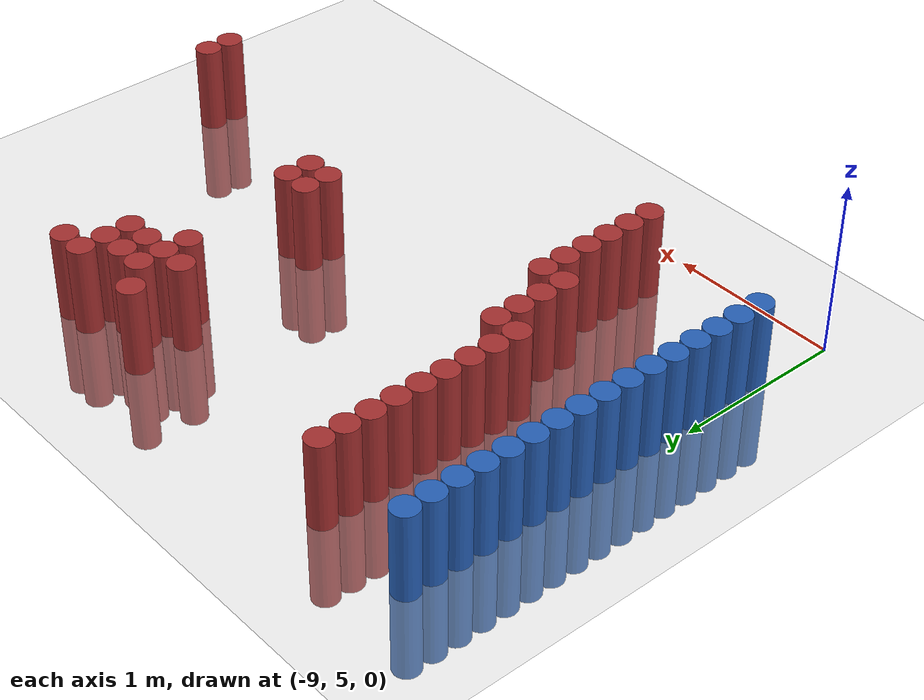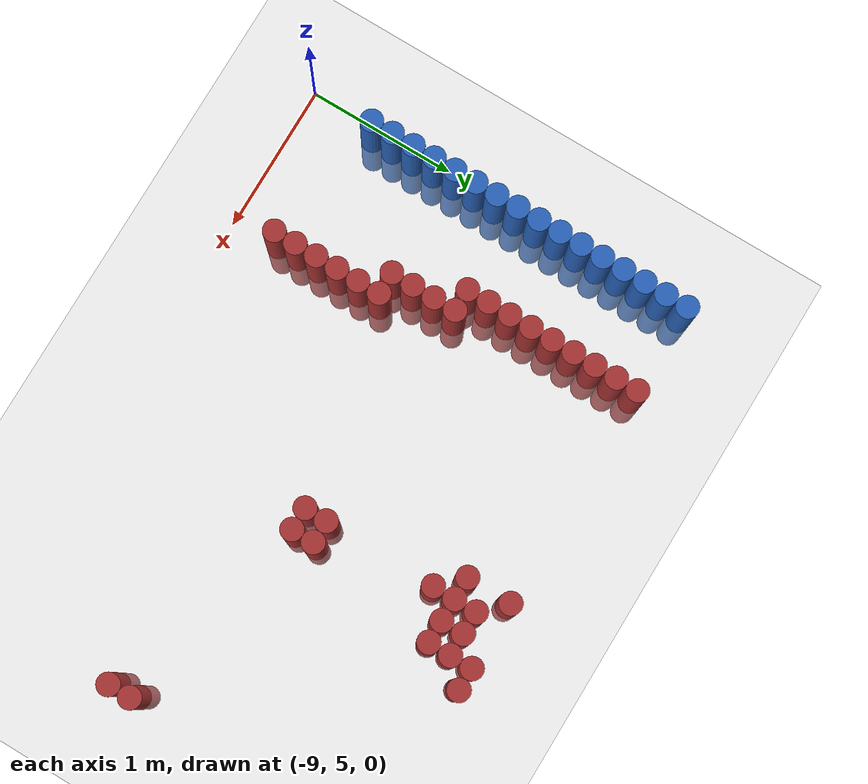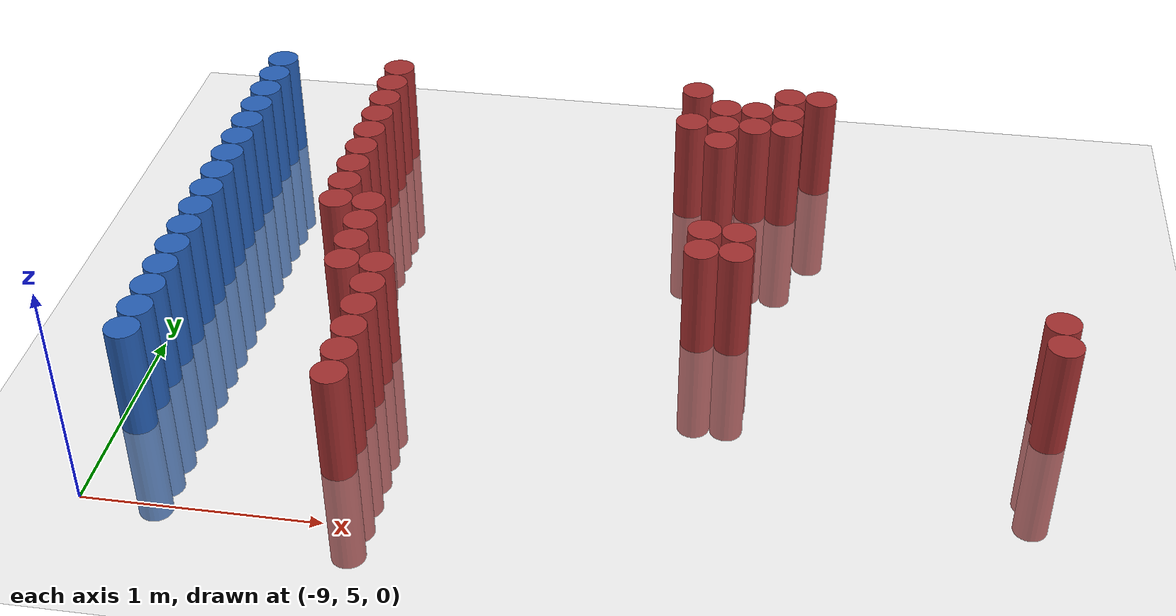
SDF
<sdf version="1.6">
 <world name="default">
  <model name="ground_plane">
   <static>1</static>
   <link name="link">
    <collision name="collision">
     <geometry><plane><normal>0 0 1</normal><size>100 100</size></plane></geometry>
     <surface><friction><ode><mu>100</mu><mu2>50</mu2></ode></friction></surface>
    </collision>
    <visual name="visual">
     <cast_shadows>0</cast_shadows>
     <geometry><plane><normal>0 0 1</normal><size>100 100</size></plane></geometry>
     <material>
      <script><uri>file://media/materials/scripts/gazebo.material</uri><name>Gazebo/Grey</name></script>
     </material>
    </visual>
   </link>
  </model>
  <model name="unit_cylinder_127">
   <static>1</static>
   <pose>-8.925000 5.475000 0.000000 0.000000 0.000000 0.000000</pose>
   <link name="link">
    <inertial>
     <mass>1</mass>
     <inertia><ixx>0.145833</ixx><ixy>0</ixy><ixz>0</ixz><iyy>0.145833</iyy><iyz>0</iyz><izz>0.125</izz></inertia>
    </inertial>
    <collision name="collision">
     <geometry><cylinder><radius>0.075000</radius><length>1</length></cylinder></geometry>
    </collision>
    <visual name="visual">
     <geometry><cylinder><radius>0.075000</radius><length>1</length></cylinder></geometry>
     <material>
      <ambient>0.152000 0.379000 0.720000 1</ambient>
      <diffuse>0.152000 0.379000 0.720000 1</diffuse>
     </material>
     <material>
      <script><name>Gazebo/Grey</name><uri>file://media/materials/scripts/gazebo.material</uri></script>
     </material>
    </visual>
   </link>
  </model>
  <model name="unit_cylinder_128">
   <static>1</static>
   <pose>-8.925000 5.625000 0.000000 0.000000 0.000000 0.000000</pose>
   <link name="link">
    <inertial>
     <mass>1</mass>
     <inertia><ixx>0.145833</ixx><ixy>0</ixy><ixz>0</ixz><iyy>0.145833</iyy><iyz>0</iyz><izz>0.125</izz></inertia>
    </inertial>
    <collision name="collision">
     <geometry><cylinder><radius>0.075000</radius><length>1</length></cylinder></geometry>
    </collision>
    <visual name="visual">
     <geometry><cylinder><radius>0.075000</radius><length>1</length></cylinder></geometry>
     <material>
      <ambient>0.152000 0.379000 0.720000 1</ambient>
      <diffuse>0.152000 0.379000 0.720000 1</diffuse>
     </material>
     <material>
      <script><name>Gazebo/Grey</name><uri>file://media/materials/scripts/gazebo.material</uri></script>
     </material>
    </visual>
   </link>
  </model>
  <model name="unit_cylinder_129">
   <static>1</static>
   <pose>-8.925000 5.775000 0.000000 0.000000 0.000000 0.000000</pose>
   <link name="link">
    <inertial>
     <mass>1</mass>
     <inertia><ixx>0.145833</ixx><ixy>0</ixy><ixz>0</ixz><iyy>0.145833</iyy><iyz>0</iyz><izz>0.125</izz></inertia>
    </inertial>
    <collision name="collision">
     <geometry><cylinder><radius>0.075000</radius><length>1</length></cylinder></geometry>
    </collision>
    <visual name="visual">
     <geometry><cylinder><radius>0.075000</radius><length>1</length></cylinder></geometry>
     <material>
      <ambient>0.152000 0.379000 0.720000 1</ambient>
      <diffuse>0.152000 0.379000 0.720000 1</diffuse>
     </material>
     <material>
      <script><name>Gazebo/Grey</name><uri>file://media/materials/scripts/gazebo.material</uri></script>
     </material>
    </visual>
   </link>
  </model>
  <model name="unit_cylinder_130">
   <static>1</static>
   <pose>-8.925000 5.925000 0.000000 0.000000 0.000000 0.000000</pose>
   <link name="link">
    <inertial>
     <mass>1</mass>
     <inertia><ixx>0.145833</ixx><ixy>0</ixy><ixz>0</ixz><iyy>0.145833</iyy><iyz>0</iyz><izz>0.125</izz></inertia>
    </inertial>
    <collision name="collision">
     <geometry><cylinder><radius>0.075000</radius><length>1</length></cylinder></geometry>
    </collision>
    <visual name="visual">
     <geometry><cylinder><radius>0.075000</radius><length>1</length></cylinder></geometry>
     <material>
      <ambient>0.152000 0.379000 0.720000 1</ambient>
      <diffuse>0.152000 0.379000 0.720000 1</diffuse>
     </material>
     <material>
      <script><name>Gazebo/Grey</name><uri>file://media/materials/scripts/gazebo.material</uri></script>
     </material>
    </visual>
   </link>
  </model>
  <model name="unit_cylinder_131">
   <static>1</static>
   <pose>-8.925000 6.075000 0.000000 0.000000 0.000000 0.000000</pose>
   <link name="link">
    <inertial>
     <mass>1</mass>
     <inertia><ixx>0.145833</ixx><ixy>0</ixy><ixz>0</ixz><iyy>0.145833</iyy><iyz>0</iyz><izz>0.125</izz></inertia>
    </inertial>
    <collision name="collision">
     <geometry><cylinder><radius>0.075000</radius><length>1</length></cylinder></geometry>
    </collision>
    <visual name="visual">
     <geometry><cylinder><radius>0.075000</radius><length>1</length></cylinder></geometry>
     <material>
      <ambient>0.152000 0.379000 0.720000 1</ambient>
      <diffuse>0.152000 0.379000 0.720000 1</diffuse>
     </material>
     <material>
      <script><name>Gazebo/Grey</name><uri>file://media/materials/scripts/gazebo.material</uri></script>
     </material>
    </visual>
   </link>
  </model>
  <model name="unit_cylinder_132">
   <static>1</static>
   <pose>-8.925000 6.225000 0.000000 0.000000 0.000000 0.000000</pose>
   <link name="link">
    <inertial>
     <mass>1</mass>
     <inertia><ixx>0.145833</ixx><ixy>0</ixy><ixz>0</ixz><iyy>0.145833</iyy><iyz>0</iyz><izz>0.125</izz></inertia>
    </inertial>
    <collision name="collision">
     <geometry><cylinder><radius>0.075000</radius><length>1</length></cylinder></geometry>
    </collision>
    <visual name="visual">
     <geometry><cylinder><radius>0.075000</radius><length>1</length></cylinder></geometry>
     <material>
      <ambient>0.152000 0.379000 0.720000 1</ambient>
      <diffuse>0.152000 0.379000 0.720000 1</diffuse>
     </material>
     <material>
      <script><name>Gazebo/Grey</name><uri>file://media/materials/scripts/gazebo.material</uri></script>
     </material>
    </visual>
   </link>
  </model>
  <model name="unit_cylinder_133">
   <static>1</static>
   <pose>-8.925000 6.375000 0.000000 0.000000 0.000000 0.000000</pose>
   <link name="link">
    <inertial>
     <mass>1</mass>
     <inertia><ixx>0.145833</ixx><ixy>0</ixy><ixz>0</ixz><iyy>0.145833</iyy><iyz>0</iyz><izz>0.125</izz></inertia>
    </inertial>
    <collision name="collision">
     <geometry><cylinder><radius>0.075000</radius><length>1</length></cylinder></geometry>
    </collision>
    <visual name="visual">
     <geometry><cylinder><radius>0.075000</radius><length>1</length></cylinder></geometry>
     <material>
      <ambient>0.152000 0.379000 0.720000 1</ambient>
      <diffuse>0.152000 0.379000 0.720000 1</diffuse>
     </material>
     <material>
      <script><name>Gazebo/Grey</name><uri>file://media/materials/scripts/gazebo.material</uri></script>
     </material>
    </visual>
   </link>
  </model>
  <model name="unit_cylinder_134">
   <static>1</static>
   <pose>-8.925000 6.525000 0.000000 0.000000 0.000000 0.000000</pose>
   <link name="link">
    <inertial>
     <mass>1</mass>
     <inertia><ixx>0.145833</ixx><ixy>0</ixy><ixz>0</ixz><iyy>0.145833</iyy><iyz>0</iyz><izz>0.125</izz></inertia>
    </inertial>
    <collision name="collision">
     <geometry><cylinder><radius>0.075000</radius><length>1</length></cylinder></geometry>
    </collision>
    <visual name="visual">
     <geometry><cylinder><radius>0.075000</radius><length>1</length></cylinder></geometry>
     <material>
      <ambient>0.152000 0.379000 0.720000 1</ambient>
      <diffuse>0.152000 0.379000 0.720000 1</diffuse>
     </material>
     <material>
      <script><name>Gazebo/Grey</name><uri>file://media/materials/scripts/gazebo.material</uri></script>
     </material>
    </visual>
   </link>
  </model>
  <model name="unit_cylinder_135">
   <static>1</static>
   <pose>-8.925000 6.675000 0.000000 0.000000 0.000000 0.000000</pose>
   <link name="link">
    <inertial>
     <mass>1</mass>
     <inertia><ixx>0.145833</ixx><ixy>0</ixy><ixz>0</ixz><iyy>0.145833</iyy><iyz>0</iyz><izz>0.125</izz></inertia>
    </inertial>
    <collision name="collision">
     <geometry><cylinder><radius>0.075000</radius><length>1</length></cylinder></geometry>
    </collision>
    <visual name="visual">
     <geometry><cylinder><radius>0.075000</radius><length>1</length></cylinder></geometry>
     <material>
      <ambient>0.152000 0.379000 0.720000 1</ambient>
      <diffuse>0.152000 0.379000 0.720000 1</diffuse>
     </material>
     <material>
      <script><name>Gazebo/Grey</name><uri>file://media/materials/scripts/gazebo.material</uri></script>
     </material>
    </visual>
   </link>
  </model>
  <model name="unit_cylinder_136">
   <static>1</static>
   <pose>-8.925000 6.825000 0.000000 0.000000 0.000000 0.000000</pose>
   <link name="link">
    <inertial>
     <mass>1</mass>
     <inertia><ixx>0.145833</ixx><ixy>0</ixy><ixz>0</ixz><iyy>0.145833</iyy><iyz>0</iyz><izz>0.125</izz></inertia>
    </inertial>
    <collision name="collision">
     <geometry><cylinder><radius>0.075000</radius><length>1</length></cylinder></geometry>
    </collision>
    <visual name="visual">
     <geometry><cylinder><radius>0.075000</radius><length>1</length></cylinder></geometry>
     <material>
      <ambient>0.152000 0.379000 0.720000 1</ambient>
      <diffuse>0.152000 0.379000 0.720000 1</diffuse>
     </material>
     <material>
      <script><name>Gazebo/Grey</name><uri>file://media/materials/scripts/gazebo.material</uri></script>
     </material>
    </visual>
   </link>
  </model>
  <model name="unit_cylinder_137">
   <static>1</static>
   <pose>-8.925000 6.975000 0.000000 0.000000 0.000000 0.000000</pose>
   <link name="link">
    <inertial>
     <mass>1</mass>
     <inertia><ixx>0.145833</ixx><ixy>0</ixy><ixz>0</ixz><iyy>0.145833</iyy><iyz>0</iyz><izz>0.125</izz></inertia>
    </inertial>
    <collision name="collision">
     <geometry><cylinder><radius>0.075000</radius><length>1</length></cylinder></geometry>
    </collision>
    <visual name="visual">
     <geometry><cylinder><radius>0.075000</radius><length>1</length></cylinder></geometry>
     <material>
      <ambient>0.152000 0.379000 0.720000 1</ambient>
      <diffuse>0.152000 0.379000 0.720000 1</diffuse>
     </material>
     <material>
      <script><name>Gazebo/Grey</name><uri>file://media/materials/scripts/gazebo.material</uri></script>
     </material>
    </visual>
   </link>
  </model>
  <model name="unit_cylinder_138">
   <static>1</static>
   <pose>-8.925000 7.125000 0.000000 0.000000 0.000000 0.000000</pose>
   <link name="link">
    <inertial>
     <mass>1</mass>
     <inertia><ixx>0.145833</ixx><ixy>0</ixy><ixz>0</ixz><iyy>0.145833</iyy><iyz>0</iyz><izz>0.125</izz></inertia>
    </inertial>
    <collision name="collision">
     <geometry><cylinder><radius>0.075000</radius><length>1</length></cylinder></geometry>
    </collision>
    <visual name="visual">
     <geometry><cylinder><radius>0.075000</radius><length>1</length></cylinder></geometry>
     <material>
      <ambient>0.152000 0.379000 0.720000 1</ambient>
      <diffuse>0.152000 0.379000 0.720000 1</diffuse>
     </material>
     <material>
      <script><name>Gazebo/Grey</name><uri>file://media/materials/scripts/gazebo.material</uri></script>
     </material>
    </visual>
   </link>
  </model>
  <model name="unit_cylinder_139">
   <static>1</static>
   <pose>-8.925000 7.275000 0.000000 0.000000 0.000000 0.000000</pose>
   <link name="link">
    <inertial>
     <mass>1</mass>
     <inertia><ixx>0.145833</ixx><ixy>0</ixy><ixz>0</ixz><iyy>0.145833</iyy><iyz>0</iyz><izz>0.125</izz></inertia>
    </inertial>
    <collision name="collision">
     <geometry><cylinder><radius>0.075000</radius><length>1</length></cylinder></geometry>
    </collision>
    <visual name="visual">
     <geometry><cylinder><radius>0.075000</radius><length>1</length></cylinder></geometry>
     <material>
      <ambient>0.152000 0.379000 0.720000 1</ambient>
      <diffuse>0.152000 0.379000 0.720000 1</diffuse>
     </material>
     <material>
      <script><name>Gazebo/Grey</name><uri>file://media/materials/scripts/gazebo.material</uri></script>
     </material>
    </visual>
   </link>
  </model>
  <model name="unit_cylinder_140">
   <static>1</static>
   <pose>-8.925000 7.425000 0.000000 0.000000 0.000000 0.000000</pose>
   <link name="link">
    <inertial>
     <mass>1</mass>
     <inertia><ixx>0.145833</ixx><ixy>0</ixy><ixz>0</ixz><iyy>0.145833</iyy><iyz>0</iyz><izz>0.125</izz></inertia>
    </inertial>
    <collision name="collision">
     <geometry><cylinder><radius>0.075000</radius><length>1</length></cylinder></geometry>
    </collision>
    <visual name="visual">
     <geometry><cylinder><radius>0.075000</radius><length>1</length></cylinder></geometry>
     <material>
      <ambient>0.152000 0.379000 0.720000 1</ambient>
      <diffuse>0.152000 0.379000 0.720000 1</diffuse>
     </material>
     <material>
      <script><name>Gazebo/Grey</name><uri>file://media/materials/scripts/gazebo.material</uri></script>
     </material>
    </visual>
   </link>
  </model>
  <model name="unit_cylinder_141">
   <static>1</static>
   <pose>-8.925000 7.575000 0.000000 0.000000 0.000000 0.000000</pose>
   <link name="link">
    <inertial>
     <mass>1</mass>
     <inertia><ixx>0.145833</ixx><ixy>0</ixy><ixz>0</ixz><iyy>0.145833</iyy><iyz>0</iyz><izz>0.125</izz></inertia>
    </inertial>
    <collision name="collision">
     <geometry><cylinder><radius>0.075000</radius><length>1</length></cylinder></geometry>
    </collision>
    <visual name="visual">
     <geometry><cylinder><radius>0.075000</radius><length>1</length></cylinder></geometry>
     <material>
      <ambient>0.152000 0.379000 0.720000 1</ambient>
      <diffuse>0.152000 0.379000 0.720000 1</diffuse>
     </material>
     <material>
      <script><name>Gazebo/Grey</name><uri>file://media/materials/scripts/gazebo.material</uri></script>
     </material>
    </visual>
   </link>
  </model>
  <model name="unit_cylinder_142">
   <static>1</static>
   <pose>-8.925000 7.725000 0.000000 0.000000 0.000000 0.000000</pose>
   <link name="link">
    <inertial>
     <mass>1</mass>
     <inertia><ixx>0.145833</ixx><ixy>0</ixy><ixz>0</ixz><iyy>0.145833</iyy><iyz>0</iyz><izz>0.125</izz></inertia>
    </inertial>
    <collision name="collision">
     <geometry><cylinder><radius>0.075000</radius><length>1</length></cylinder></geometry>
    </collision>
    <visual name="visual">
     <geometry><cylinder><radius>0.075000</radius><length>1</length></cylinder></geometry>
     <material>
      <ambient>0.152000 0.379000 0.720000 1</ambient>
      <diffuse>0.152000 0.379000 0.720000 1</diffuse>
     </material>
     <material>
      <script><name>Gazebo/Grey</name><uri>file://media/materials/scripts/gazebo.material</uri></script>
     </material>
    </visual>
   </link>
  </model>
  <model name="unit_cylinder_162">
   <static>1</static>
   <pose>-8.325000 6.525000 0.000000 0.000000 0.000000 0.000000</pose>
   <link name="link">
    <inertial>
     <mass>1</mass>
     <inertia><ixx>0.145833</ixx><ixy>0</ixy><ixz>0</ixz><iyy>0.145833</iyy><iyz>0</iyz><izz>0.125</izz></inertia>
    </inertial>
    <collision name="collision">
     <geometry><cylinder><radius>0.075000</radius><length>1</length></cylinder></geometry>
    </collision>
    <visual name="visual">
     <geometry><cylinder><radius>0.075000</radius><length>1</length></cylinder></geometry>
     <material>
      <ambient>0.648000 0.192000 0.192000 1</ambient>
      <diffuse>0.648000 0.192000 0.192000 1</diffuse>
     </material>
     <material>
      <script><name>Gazebo/Grey</name><uri>file://media/materials/scripts/gazebo.material</uri></script>
     </material>
    </visual>
   </link>
  </model>
  <model name="unit_cylinder_163">
   <static>1</static>
   <pose>-8.325000 6.675000 0.000000 0.000000 0.000000 0.000000</pose>
   <link name="link">
    <inertial>
     <mass>1</mass>
     <inertia><ixx>0.145833</ixx><ixy>0</ixy><ixz>0</ixz><iyy>0.145833</iyy><iyz>0</iyz><izz>0.125</izz></inertia>
    </inertial>
    <collision name="collision">
     <geometry><cylinder><radius>0.075000</radius><length>1</length></cylinder></geometry>
    </collision>
    <visual name="visual">
     <geometry><cylinder><radius>0.075000</radius><length>1</length></cylinder></geometry>
     <material>
      <ambient>0.648000 0.192000 0.192000 1</ambient>
      <diffuse>0.648000 0.192000 0.192000 1</diffuse>
     </material>
     <material>
      <script><name>Gazebo/Grey</name><uri>file://media/materials/scripts/gazebo.material</uri></script>
     </material>
    </visual>
   </link>
  </model>
  <model name="unit_cylinder_164">
   <static>1</static>
   <pose>-8.325000 6.825000 0.000000 0.000000 0.000000 0.000000</pose>
   <link name="link">
    <inertial>
     <mass>1</mass>
     <inertia><ixx>0.145833</ixx><ixy>0</ixy><ixz>0</ixz><iyy>0.145833</iyy><iyz>0</iyz><izz>0.125</izz></inertia>
    </inertial>
    <collision name="collision">
     <geometry><cylinder><radius>0.075000</radius><length>1</length></cylinder></geometry>
    </collision>
    <visual name="visual">
     <geometry><cylinder><radius>0.075000</radius><length>1</length></cylinder></geometry>
     <material>
      <ambient>0.648000 0.192000 0.192000 1</ambient>
      <diffuse>0.648000 0.192000 0.192000 1</diffuse>
     </material>
     <material>
      <script><name>Gazebo/Grey</name><uri>file://media/materials/scripts/gazebo.material</uri></script>
     </material>
    </visual>
   </link>
  </model>
  <model name="unit_cylinder_165">
   <static>1</static>
   <pose>-8.325000 6.975000 0.000000 0.000000 0.000000 0.000000</pose>
   <link name="link">
    <inertial>
     <mass>1</mass>
     <inertia><ixx>0.145833</ixx><ixy>0</ixy><ixz>0</ixz><iyy>0.145833</iyy><iyz>0</iyz><izz>0.125</izz></inertia>
    </inertial>
    <collision name="collision">
     <geometry><cylinder><radius>0.075000</radius><length>1</length></cylinder></geometry>
    </collision>
    <visual name="visual">
     <geometry><cylinder><radius>0.075000</radius><length>1</length></cylinder></geometry>
     <material>
      <ambient>0.648000 0.192000 0.192000 1</ambient>
      <diffuse>0.648000 0.192000 0.192000 1</diffuse>
     </material>
     <material>
      <script><name>Gazebo/Grey</name><uri>file://media/materials/scripts/gazebo.material</uri></script>
     </material>
    </visual>
   </link>
  </model>
  <model name="unit_cylinder_166">
   <static>1</static>
   <pose>-8.325000 7.125000 0.000000 0.000000 0.000000 0.000000</pose>
   <link name="link">
    <inertial>
     <mass>1</mass>
     <inertia><ixx>0.145833</ixx><ixy>0</ixy><ixz>0</ixz><iyy>0.145833</iyy><iyz>0</iyz><izz>0.125</izz></inertia>
    </inertial>
    <collision name="collision">
     <geometry><cylinder><radius>0.075000</radius><length>1</length></cylinder></geometry>
    </collision>
    <visual name="visual">
     <geometry><cylinder><radius>0.075000</radius><length>1</length></cylinder></geometry>
     <material>
      <ambient>0.648000 0.192000 0.192000 1</ambient>
      <diffuse>0.648000 0.192000 0.192000 1</diffuse>
     </material>
     <material>
      <script><name>Gazebo/Grey</name><uri>file://media/materials/scripts/gazebo.material</uri></script>
     </material>
    </visual>
   </link>
  </model>
  <model name="unit_cylinder_167">
   <static>1</static>
   <pose>-8.325000 7.275000 0.000000 0.000000 0.000000 0.000000</pose>
   <link name="link">
    <inertial>
     <mass>1</mass>
     <inertia><ixx>0.145833</ixx><ixy>0</ixy><ixz>0</ixz><iyy>0.145833</iyy><iyz>0</iyz><izz>0.125</izz></inertia>
    </inertial>
    <collision name="collision">
     <geometry><cylinder><radius>0.075000</radius><length>1</length></cylinder></geometry>
    </collision>
    <visual name="visual">
     <geometry><cylinder><radius>0.075000</radius><length>1</length></cylinder></geometry>
     <material>
      <ambient>0.648000 0.192000 0.192000 1</ambient>
      <diffuse>0.648000 0.192000 0.192000 1</diffuse>
     </material>
     <material>
      <script><name>Gazebo/Grey</name><uri>file://media/materials/scripts/gazebo.material</uri></script>
     </material>
    </visual>
   </link>
  </model>
  <model name="unit_cylinder_168">
   <static>1</static>
   <pose>-8.325000 7.425000 0.000000 0.000000 0.000000 0.000000</pose>
   <link name="link">
    <inertial>
     <mass>1</mass>
     <inertia><ixx>0.145833</ixx><ixy>0</ixy><ixz>0</ixz><iyy>0.145833</iyy><iyz>0</iyz><izz>0.125</izz></inertia>
    </inertial>
    <collision name="collision">
     <geometry><cylinder><radius>0.075000</radius><length>1</length></cylinder></geometry>
    </collision>
    <visual name="visual">
     <geometry><cylinder><radius>0.075000</radius><length>1</length></cylinder></geometry>
     <material>
      <ambient>0.648000 0.192000 0.192000 1</ambient>
      <diffuse>0.648000 0.192000 0.192000 1</diffuse>
     </material>
     <material>
      <script><name>Gazebo/Grey</name><uri>file://media/materials/scripts/gazebo.material</uri></script>
     </material>
    </visual>
   </link>
  </model>
  <model name="unit_cylinder_169">
   <static>1</static>
   <pose>-8.325000 7.575000 0.000000 0.000000 0.000000 0.000000</pose>
   <link name="link">
    <inertial>
     <mass>1</mass>
     <inertia><ixx>0.145833</ixx><ixy>0</ixy><ixz>0</ixz><iyy>0.145833</iyy><iyz>0</iyz><izz>0.125</izz></inertia>
    </inertial>
    <collision name="collision">
     <geometry><cylinder><radius>0.075000</radius><length>1</length></cylinder></geometry>
    </collision>
    <visual name="visual">
     <geometry><cylinder><radius>0.075000</radius><length>1</length></cylinder></geometry>
     <material>
      <ambient>0.648000 0.192000 0.192000 1</ambient>
      <diffuse>0.648000 0.192000 0.192000 1</diffuse>
     </material>
     <material>
      <script><name>Gazebo/Grey</name><uri>file://media/materials/scripts/gazebo.material</uri></script>
     </material>
    </visual>
   </link>
  </model>
  <model name="unit_cylinder_170">
   <static>1</static>
   <pose>-8.325000 7.725000 0.000000 0.000000 0.000000 0.000000</pose>
   <link name="link">
    <inertial>
     <mass>1</mass>
     <inertia><ixx>0.145833</ixx><ixy>0</ixy><ixz>0</ixz><iyy>0.145833</iyy><iyz>0</iyz><izz>0.125</izz></inertia>
    </inertial>
    <collision name="collision">
     <geometry><cylinder><radius>0.075000</radius><length>1</length></cylinder></geometry>
    </collision>
    <visual name="visual">
     <geometry><cylinder><radius>0.075000</radius><length>1</length></cylinder></geometry>
     <material>
      <ambient>0.648000 0.192000 0.192000 1</ambient>
      <diffuse>0.648000 0.192000 0.192000 1</diffuse>
     </material>
     <material>
      <script><name>Gazebo/Grey</name><uri>file://media/materials/scripts/gazebo.material</uri></script>
     </material>
    </visual>
   </link>
  </model>
  <model name="unit_cylinder_184">
   <static>1</static>
   <pose>-8.175000 6.075000 0.000000 0.000000 0.000000 0.000000</pose>
   <link name="link">
    <inertial>
     <mass>1</mass>
     <inertia><ixx>0.145833</ixx><ixy>0</ixy><ixz>0</ixz><iyy>0.145833</iyy><iyz>0</iyz><izz>0.125</izz></inertia>
    </inertial>
    <collision name="collision">
     <geometry><cylinder><radius>0.075000</radius><length>1</length></cylinder></geometry>
    </collision>
    <visual name="visual">
     <geometry><cylinder><radius>0.075000</radius><length>1</length></cylinder></geometry>
     <material>
      <ambient>0.648000 0.192000 0.192000 1</ambient>
      <diffuse>0.648000 0.192000 0.192000 1</diffuse>
     </material>
     <material>
      <script><name>Gazebo/Grey</name><uri>file://media/materials/scripts/gazebo.material</uri></script>
     </material>
    </visual>
   </link>
  </model>
  <model name="unit_cylinder_185">
   <static>1</static>
   <pose>-8.175000 6.225000 0.000000 0.000000 0.000000 0.000000</pose>
   <link name="link">
    <inertial>
     <mass>1</mass>
     <inertia><ixx>0.145833</ixx><ixy>0</ixy><ixz>0</ixz><iyy>0.145833</iyy><iyz>0</iyz><izz>0.125</izz></inertia>
    </inertial>
    <collision name="collision">
     <geometry><cylinder><radius>0.075000</radius><length>1</length></cylinder></geometry>
    </collision>
    <visual name="visual">
     <geometry><cylinder><radius>0.075000</radius><length>1</length></cylinder></geometry>
     <material>
      <ambient>0.648000 0.192000 0.192000 1</ambient>
      <diffuse>0.648000 0.192000 0.192000 1</diffuse>
     </material>
     <material>
      <script><name>Gazebo/Grey</name><uri>file://media/materials/scripts/gazebo.material</uri></script>
     </material>
    </visual>
   </link>
  </model>
  <model name="unit_cylinder_186">
   <static>1</static>
   <pose>-8.175000 6.375000 0.000000 0.000000 0.000000 0.000000</pose>
   <link name="link">
    <inertial>
     <mass>1</mass>
     <inertia><ixx>0.145833</ixx><ixy>0</ixy><ixz>0</ixz><iyy>0.145833</iyy><iyz>0</iyz><izz>0.125</izz></inertia>
    </inertial>
    <collision name="collision">
     <geometry><cylinder><radius>0.075000</radius><length>1</length></cylinder></geometry>
    </collision>
    <visual name="visual">
     <geometry><cylinder><radius>0.075000</radius><length>1</length></cylinder></geometry>
     <material>
      <ambient>0.648000 0.192000 0.192000 1</ambient>
      <diffuse>0.648000 0.192000 0.192000 1</diffuse>
     </material>
     <material>
      <script><name>Gazebo/Grey</name><uri>file://media/materials/scripts/gazebo.material</uri></script>
     </material>
    </visual>
   </link>
  </model>
  <model name="unit_cylinder_187">
   <static>1</static>
   <pose>-8.175000 6.525000 0.000000 0.000000 0.000000 0.000000</pose>
   <link name="link">
    <inertial>
     <mass>1</mass>
     <inertia><ixx>0.145833</ixx><ixy>0</ixy><ixz>0</ixz><iyy>0.145833</iyy><iyz>0</iyz><izz>0.125</izz></inertia>
    </inertial>
    <collision name="collision">
     <geometry><cylinder><radius>0.075000</radius><length>1</length></cylinder></geometry>
    </collision>
    <visual name="visual">
     <geometry><cylinder><radius>0.075000</radius><length>1</length></cylinder></geometry>
     <material>
      <ambient>0.648000 0.192000 0.192000 1</ambient>
      <diffuse>0.648000 0.192000 0.192000 1</diffuse>
     </material>
     <material>
      <script><name>Gazebo/Grey</name><uri>file://media/materials/scripts/gazebo.material</uri></script>
     </material>
    </visual>
   </link>
  </model>
  <model name="unit_cylinder_189">
   <static>1</static>
   <pose>-8.025000 5.325000 0.000000 0.000000 0.000000 0.000000</pose>
   <link name="link">
    <inertial>
     <mass>1</mass>
     <inertia><ixx>0.145833</ixx><ixy>0</ixy><ixz>0</ixz><iyy>0.145833</iyy><iyz>0</iyz><izz>0.125</izz></inertia>
    </inertial>
    <collision name="collision">
     <geometry><cylinder><radius>0.075000</radius><length>1</length></cylinder></geometry>
    </collision>
    <visual name="visual">
     <geometry><cylinder><radius>0.075000</radius><length>1</length></cylinder></geometry>
     <material>
      <ambient>0.648000 0.192000 0.192000 1</ambient>
      <diffuse>0.648000 0.192000 0.192000 1</diffuse>
     </material>
     <material>
      <script><name>Gazebo/Grey</name><uri>file://media/materials/scripts/gazebo.material</uri></script>
     </material>
    </visual>
   </link>
  </model>
  <model name="unit_cylinder_190">
   <static>1</static>
   <pose>-8.025000 5.475000 0.000000 0.000000 0.000000 0.000000</pose>
   <link name="link">
    <inertial>
     <mass>1</mass>
     <inertia><ixx>0.145833</ixx><ixy>0</ixy><ixz>0</ixz><iyy>0.145833</iyy><iyz>0</iyz><izz>0.125</izz></inertia>
    </inertial>
    <collision name="collision">
     <geometry><cylinder><radius>0.075000</radius><length>1</length></cylinder></geometry>
    </collision>
    <visual name="visual">
     <geometry><cylinder><radius>0.075000</radius><length>1</length></cylinder></geometry>
     <material>
      <ambient>0.648000 0.192000 0.192000 1</ambient>
      <diffuse>0.648000 0.192000 0.192000 1</diffuse>
     </material>
     <material>
      <script><name>Gazebo/Grey</name><uri>file://media/materials/scripts/gazebo.material</uri></script>
     </material>
    </visual>
   </link>
  </model>
  <model name="unit_cylinder_191">
   <static>1</static>
   <pose>-8.025000 5.625000 0.000000 0.000000 0.000000 0.000000</pose>
   <link name="link">
    <inertial>
     <mass>1</mass>
     <inertia><ixx>0.145833</ixx><ixy>0</ixy><ixz>0</ixz><iyy>0.145833</iyy><iyz>0</iyz><izz>0.125</izz></inertia>
    </inertial>
    <collision name="collision">
     <geometry><cylinder><radius>0.075000</radius><length>1</length></cylinder></geometry>
    </collision>
    <visual name="visual">
     <geometry><cylinder><radius>0.075000</radius><length>1</length></cylinder></geometry>
     <material>
      <ambient>0.648000 0.192000 0.192000 1</ambient>
      <diffuse>0.648000 0.192000 0.192000 1</diffuse>
     </material>
     <material>
      <script><name>Gazebo/Grey</name><uri>file://media/materials/scripts/gazebo.material</uri></script>
     </material>
    </visual>
   </link>
  </model>
  <model name="unit_cylinder_192">
   <static>1</static>
   <pose>-8.025000 5.775000 0.000000 0.000000 0.000000 0.000000</pose>
   <link name="link">
    <inertial>
     <mass>1</mass>
     <inertia><ixx>0.145833</ixx><ixy>0</ixy><ixz>0</ixz><iyy>0.145833</iyy><iyz>0</iyz><izz>0.125</izz></inertia>
    </inertial>
    <collision name="collision">
     <geometry><cylinder><radius>0.075000</radius><length>1</length></cylinder></geometry>
    </collision>
    <visual name="visual">
     <geometry><cylinder><radius>0.075000</radius><length>1</length></cylinder></geometry>
     <material>
      <ambient>0.648000 0.192000 0.192000 1</ambient>
      <diffuse>0.648000 0.192000 0.192000 1</diffuse>
     </material>
     <material>
      <script><name>Gazebo/Grey</name><uri>file://media/materials/scripts/gazebo.material</uri></script>
     </material>
    </visual>
   </link>
  </model>
  <model name="unit_cylinder_193">
   <static>1</static>
   <pose>-8.025000 5.925000 0.000000 0.000000 0.000000 0.000000</pose>
   <link name="link">
    <inertial>
     <mass>1</mass>
     <inertia><ixx>0.145833</ixx><ixy>0</ixy><ixz>0</ixz><iyy>0.145833</iyy><iyz>0</iyz><izz>0.125</izz></inertia>
    </inertial>
    <collision name="collision">
     <geometry><cylinder><radius>0.075000</radius><length>1</length></cylinder></geometry>
    </collision>
    <visual name="visual">
     <geometry><cylinder><radius>0.075000</radius><length>1</length></cylinder></geometry>
     <material>
      <ambient>0.648000 0.192000 0.192000 1</ambient>
      <diffuse>0.648000 0.192000 0.192000 1</diffuse>
     </material>
     <material>
      <script><name>Gazebo/Grey</name><uri>file://media/materials/scripts/gazebo.material</uri></script>
     </material>
    </visual>
   </link>
  </model>
  <model name="unit_cylinder_194">
   <static>1</static>
   <pose>-8.025000 6.075000 0.000000 0.000000 0.000000 0.000000</pose>
   <link name="link">
    <inertial>
     <mass>1</mass>
     <inertia><ixx>0.145833</ixx><ixy>0</ixy><ixz>0</ixz><iyy>0.145833</iyy><iyz>0</iyz><izz>0.125</izz></inertia>
    </inertial>
    <collision name="collision">
     <geometry><cylinder><radius>0.075000</radius><length>1</length></cylinder></geometry>
    </collision>
    <visual name="visual">
     <geometry><cylinder><radius>0.075000</radius><length>1</length></cylinder></geometry>
     <material>
      <ambient>0.648000 0.192000 0.192000 1</ambient>
      <diffuse>0.648000 0.192000 0.192000 1</diffuse>
     </material>
     <material>
      <script><name>Gazebo/Grey</name><uri>file://media/materials/scripts/gazebo.material</uri></script>
     </material>
    </visual>
   </link>
  </model>
  <model name="unit_cylinder_200">
   <static>1</static>
   <pose>-6.825000 7.425000 0.000000 0.000000 0.000000 0.000000</pose>
   <link name="link">
    <inertial>
     <mass>1</mass>
     <inertia><ixx>0.145833</ixx><ixy>0</ixy><ixz>0</ixz><iyy>0.145833</iyy><iyz>0</iyz><izz>0.125</izz></inertia>
    </inertial>
    <collision name="collision">
     <geometry><cylinder><radius>0.075000</radius><length>1</length></cylinder></geometry>
    </collision>
    <visual name="visual">
     <geometry><cylinder><radius>0.075000</radius><length>1</length></cylinder></geometry>
     <material>
      <ambient>0.648000 0.192000 0.192000 1</ambient>
      <diffuse>0.648000 0.192000 0.192000 1</diffuse>
     </material>
     <material>
      <script><name>Gazebo/Grey</name><uri>file://media/materials/scripts/gazebo.material</uri></script>
     </material>
    </visual>
   </link>
  </model>
  <model name="unit_cylinder_201">
   <static>1</static>
   <pose>-6.825000 7.725000 0.000000 0.000000 0.000000 0.000000</pose>
   <link name="link">
    <inertial>
     <mass>1</mass>
     <inertia><ixx>0.145833</ixx><ixy>0</ixy><ixz>0</ixz><iyy>0.145833</iyy><iyz>0</iyz><izz>0.125</izz></inertia>
    </inertial>
    <collision name="collision">
     <geometry><cylinder><radius>0.075000</radius><length>1</length></cylinder></geometry>
    </collision>
    <visual name="visual">
     <geometry><cylinder><radius>0.075000</radius><length>1</length></cylinder></geometry>
     <material>
      <ambient>0.648000 0.192000 0.192000 1</ambient>
      <diffuse>0.648000 0.192000 0.192000 1</diffuse>
     </material>
     <material>
      <script><name>Gazebo/Grey</name><uri>file://media/materials/scripts/gazebo.material</uri></script>
     </material>
    </visual>
   </link>
  </model>
  <model name="unit_cylinder_210">
   <static>1</static>
   <pose>-6.675000 6.375000 0.000000 0.000000 0.000000 0.000000</pose>
   <link name="link">
    <inertial>
     <mass>1</mass>
     <inertia><ixx>0.145833</ixx><ixy>0</ixy><ixz>0</ixz><iyy>0.145833</iyy><iyz>0</iyz><izz>0.125</izz></inertia>
    </inertial>
    <collision name="collision">
     <geometry><cylinder><radius>0.075000</radius><length>1</length></cylinder></geometry>
    </collision>
    <visual name="visual">
     <geometry><cylinder><radius>0.075000</radius><length>1</length></cylinder></geometry>
     <material>
      <ambient>0.648000 0.192000 0.192000 1</ambient>
      <diffuse>0.648000 0.192000 0.192000 1</diffuse>
     </material>
     <material>
      <script><name>Gazebo/Grey</name><uri>file://media/materials/scripts/gazebo.material</uri></script>
     </material>
    </visual>
   </link>
  </model>
  <model name="unit_cylinder_211">
   <static>1</static>
   <pose>-6.675000 6.525000 0.000000 0.000000 0.000000 0.000000</pose>
   <link name="link">
    <inertial>
     <mass>1</mass>
     <inertia><ixx>0.145833</ixx><ixy>0</ixy><ixz>0</ixz><iyy>0.145833</iyy><iyz>0</iyz><izz>0.125</izz></inertia>
    </inertial>
    <collision name="collision">
     <geometry><cylinder><radius>0.075000</radius><length>1</length></cylinder></geometry>
    </collision>
    <visual name="visual">
     <geometry><cylinder><radius>0.075000</radius><length>1</length></cylinder></geometry>
     <material>
      <ambient>0.648000 0.192000 0.192000 1</ambient>
      <diffuse>0.648000 0.192000 0.192000 1</diffuse>
     </material>
     <material>
      <script><name>Gazebo/Grey</name><uri>file://media/materials/scripts/gazebo.material</uri></script>
     </material>
    </visual>
   </link>
  </model>
  <model name="unit_cylinder_212">
   <static>1</static>
   <pose>-6.675000 7.275000 0.000000 0.000000 0.000000 0.000000</pose>
   <link name="link">
    <inertial>
     <mass>1</mass>
     <inertia><ixx>0.145833</ixx><ixy>0</ixy><ixz>0</ixz><iyy>0.145833</iyy><iyz>0</iyz><izz>0.125</izz></inertia>
    </inertial>
    <collision name="collision">
     <geometry><cylinder><radius>0.075000</radius><length>1</length></cylinder></geometry>
    </collision>
    <visual name="visual">
     <geometry><cylinder><radius>0.075000</radius><length>1</length></cylinder></geometry>
     <material>
      <ambient>0.648000 0.192000 0.192000 1</ambient>
      <diffuse>0.648000 0.192000 0.192000 1</diffuse>
     </material>
     <material>
      <script><name>Gazebo/Grey</name><uri>file://media/materials/scripts/gazebo.material</uri></script>
     </material>
    </visual>
   </link>
  </model>
  <model name="unit_cylinder_213">
   <static>1</static>
   <pose>-6.675000 7.425000 0.000000 0.000000 0.000000 0.000000</pose>
   <link name="link">
    <inertial>
     <mass>1</mass>
     <inertia><ixx>0.145833</ixx><ixy>0</ixy><ixz>0</ixz><iyy>0.145833</iyy><iyz>0</iyz><izz>0.125</izz></inertia>
    </inertial>
    <collision name="collision">
     <geometry><cylinder><radius>0.075000</radius><length>1</length></cylinder></geometry>
    </collision>
    <visual name="visual">
     <geometry><cylinder><radius>0.075000</radius><length>1</length></cylinder></geometry>
     <material>
      <ambient>0.648000 0.192000 0.192000 1</ambient>
      <diffuse>0.648000 0.192000 0.192000 1</diffuse>
     </material>
     <material>
      <script><name>Gazebo/Grey</name><uri>file://media/materials/scripts/gazebo.material</uri></script>
     </material>
    </visual>
   </link>
  </model>
  <model name="unit_cylinder_214">
   <static>1</static>
   <pose>-6.675000 7.575000 0.000000 0.000000 0.000000 0.000000</pose>
   <link name="link">
    <inertial>
     <mass>1</mass>
     <inertia><ixx>0.145833</ixx><ixy>0</ixy><ixz>0</ixz><iyy>0.145833</iyy><iyz>0</iyz><izz>0.125</izz></inertia>
    </inertial>
    <collision name="collision">
     <geometry><cylinder><radius>0.075000</radius><length>1</length></cylinder></geometry>
    </collision>
    <visual name="visual">
     <geometry><cylinder><radius>0.075000</radius><length>1</length></cylinder></geometry>
     <material>
      <ambient>0.648000 0.192000 0.192000 1</ambient>
      <diffuse>0.648000 0.192000 0.192000 1</diffuse>
     </material>
     <material>
      <script><name>Gazebo/Grey</name><uri>file://media/materials/scripts/gazebo.material</uri></script>
     </material>
    </visual>
   </link>
  </model>
  <model name="unit_cylinder_222">
   <static>1</static>
   <pose>-6.525000 6.375000 0.000000 0.000000 0.000000 0.000000</pose>
   <link name="link">
    <inertial>
     <mass>1</mass>
     <inertia><ixx>0.145833</ixx><ixy>0</ixy><ixz>0</ixz><iyy>0.145833</iyy><iyz>0</iyz><izz>0.125</izz></inertia>
    </inertial>
    <collision name="collision">
     <geometry><cylinder><radius>0.075000</radius><length>1</length></cylinder></geometry>
    </collision>
    <visual name="visual">
     <geometry><cylinder><radius>0.075000</radius><length>1</length></cylinder></geometry>
     <material>
      <ambient>0.648000 0.192000 0.192000 1</ambient>
      <diffuse>0.648000 0.192000 0.192000 1</diffuse>
     </material>
     <material>
      <script><name>Gazebo/Grey</name><uri>file://media/materials/scripts/gazebo.material</uri></script>
     </material>
    </visual>
   </link>
  </model>
  <model name="unit_cylinder_223">
   <static>1</static>
   <pose>-6.525000 6.525000 0.000000 0.000000 0.000000 0.000000</pose>
   <link name="link">
    <inertial>
     <mass>1</mass>
     <inertia><ixx>0.145833</ixx><ixy>0</ixy><ixz>0</ixz><iyy>0.145833</iyy><iyz>0</iyz><izz>0.125</izz></inertia>
    </inertial>
    <collision name="collision">
     <geometry><cylinder><radius>0.075000</radius><length>1</length></cylinder></geometry>
    </collision>
    <visual name="visual">
     <geometry><cylinder><radius>0.075000</radius><length>1</length></cylinder></geometry>
     <material>
      <ambient>0.648000 0.192000 0.192000 1</ambient>
      <diffuse>0.648000 0.192000 0.192000 1</diffuse>
     </material>
     <material>
      <script><name>Gazebo/Grey</name><uri>file://media/materials/scripts/gazebo.material</uri></script>
     </material>
    </visual>
   </link>
  </model>
  <model name="unit_cylinder_224">
   <static>1</static>
   <pose>-6.525000 7.425000 0.000000 0.000000 0.000000 0.000000</pose>
   <link name="link">
    <inertial>
     <mass>1</mass>
     <inertia><ixx>0.145833</ixx><ixy>0</ixy><ixz>0</ixz><iyy>0.145833</iyy><iyz>0</iyz><izz>0.125</izz></inertia>
    </inertial>
    <collision name="collision">
     <geometry><cylinder><radius>0.075000</radius><length>1</length></cylinder></geometry>
    </collision>
    <visual name="visual">
     <geometry><cylinder><radius>0.075000</radius><length>1</length></cylinder></geometry>
     <material>
      <ambient>0.648000 0.192000 0.192000 1</ambient>
      <diffuse>0.648000 0.192000 0.192000 1</diffuse>
     </material>
     <material>
      <script><name>Gazebo/Grey</name><uri>file://media/materials/scripts/gazebo.material</uri></script>
     </material>
    </visual>
   </link>
  </model>
  <model name="unit_cylinder_225">
   <static>1</static>
   <pose>-6.525000 7.575000 0.000000 0.000000 0.000000 0.000000</pose>
   <link name="link">
    <inertial>
     <mass>1</mass>
     <inertia><ixx>0.145833</ixx><ixy>0</ixy><ixz>0</ixz><iyy>0.145833</iyy><iyz>0</iyz><izz>0.125</izz></inertia>
    </inertial>
    <collision name="collision">
     <geometry><cylinder><radius>0.075000</radius><length>1</length></cylinder></geometry>
    </collision>
    <visual name="visual">
     <geometry><cylinder><radius>0.075000</radius><length>1</length></cylinder></geometry>
     <material>
      <ambient>0.648000 0.192000 0.192000 1</ambient>
      <diffuse>0.648000 0.192000 0.192000 1</diffuse>
     </material>
     <material>
      <script><name>Gazebo/Grey</name><uri>file://media/materials/scripts/gazebo.material</uri></script>
     </material>
    </visual>
   </link>
  </model>
  <model name="unit_cylinder_228">
   <static>1</static>
   <pose>-6.375000 7.425000 0.000000 0.000000 0.000000 0.000000</pose>
   <link name="link">
    <inertial>
     <mass>1</mass>
     <inertia><ixx>0.145833</ixx><ixy>0</ixy><ixz>0</ixz><iyy>0.145833</iyy><iyz>0</iyz><izz>0.125</izz></inertia>
    </inertial>
    <collision name="collision">
     <geometry><cylinder><radius>0.075000</radius><length>1</length></cylinder></geometry>
    </collision>
    <visual name="visual">
     <geometry><cylinder><radius>0.075000</radius><length>1</length></cylinder></geometry>
     <material>
      <ambient>0.648000 0.192000 0.192000 1</ambient>
      <diffuse>0.648000 0.192000 0.192000 1</diffuse>
     </material>
     <material>
      <script><name>Gazebo/Grey</name><uri>file://media/materials/scripts/gazebo.material</uri></script>
     </material>
    </visual>
   </link>
  </model>
  <model name="unit_cylinder_229">
   <static>1</static>
   <pose>-6.375000 7.575000 0.000000 0.000000 0.000000 0.000000</pose>
   <link name="link">
    <inertial>
     <mass>1</mass>
     <inertia><ixx>0.145833</ixx><ixy>0</ixy><ixz>0</ixz><iyy>0.145833</iyy><iyz>0</iyz><izz>0.125</izz></inertia>
    </inertial>
    <collision name="collision">
     <geometry><cylinder><radius>0.075000</radius><length>1</length></cylinder></geometry>
    </collision>
    <visual name="visual">
     <geometry><cylinder><radius>0.075000</radius><length>1</length></cylinder></geometry>
     <material>
      <ambient>0.648000 0.192000 0.192000 1</ambient>
      <diffuse>0.648000 0.192000 0.192000 1</diffuse>
     </material>
     <material>
      <script><name>Gazebo/Grey</name><uri>file://media/materials/scripts/gazebo.material</uri></script>
     </material>
    </visual>
   </link>
  </model>
  <model name="unit_cylinder_230">
   <static>1</static>
   <pose>-6.375000 7.725000 0.000000 0.000000 0.000000 0.000000</pose>
   <link name="link">
    <inertial>
     <mass>1</mass>
     <inertia><ixx>0.145833</ixx><ixy>0</ixy><ixz>0</ixz><iyy>0.145833</iyy><iyz>0</iyz><izz>0.125</izz></inertia>
    </inertial>
    <collision name="collision">
     <geometry><cylinder><radius>0.075000</radius><length>1</length></cylinder></geometry>
    </collision>
    <visual name="visual">
     <geometry><cylinder><radius>0.075000</radius><length>1</length></cylinder></geometry>
     <material>
      <ambient>0.648000 0.192000 0.192000 1</ambient>
      <diffuse>0.648000 0.192000 0.192000 1</diffuse>
     </material>
     <material>
      <script><name>Gazebo/Grey</name><uri>file://media/materials/scripts/gazebo.material</uri></script>
     </material>
    </visual>
   </link>
  </model>
  <model name="unit_cylinder_232">
   <static>1</static>
   <pose>-6.225000 7.725000 0.000000 0.000000 0.000000 0.000000</pose>
   <link name="link">
    <inertial>
     <mass>1</mass>
     <inertia><ixx>0.145833</ixx><ixy>0</ixy><ixz>0</ixz><iyy>0.145833</iyy><iyz>0</iyz><izz>0.125</izz></inertia>
    </inertial>
    <collision name="collision">
     <geometry><cylinder><radius>0.075000</radius><length>1</length></cylinder></geometry>
    </collision>
    <visual name="visual">
     <geometry><cylinder><radius>0.075000</radius><length>1</length></cylinder></geometry>
     <material>
      <ambient>0.648000 0.192000 0.192000 1</ambient>
      <diffuse>0.648000 0.192000 0.192000 1</diffuse>
     </material>
     <material>
      <script><name>Gazebo/Grey</name><uri>file://media/materials/scripts/gazebo.material</uri></script>
     </material>
    </visual>
   </link>
  </model>
  <model name="unit_cylinder_234">
   <static>1</static>
   <pose>-5.175000 5.925000 0.000000 0.000000 0.000000 0.000000</pose>
   <link name="link">
    <inertial>
     <mass>1</mass>
     <inertia><ixx>0.145833</ixx><ixy>0</ixy><ixz>0</ixz><iyy>0.145833</iyy><iyz>0</iyz><izz>0.125</izz></inertia>
    </inertial>
    <collision name="collision">
     <geometry><cylinder><radius>0.075000</radius><length>1</length></cylinder></geometry>
    </collision>
    <visual name="visual">
     <geometry><cylinder><radius>0.075000</radius><length>1</length></cylinder></geometry>
     <material>
      <ambient>0.648000 0.192000 0.192000 1</ambient>
      <diffuse>0.648000 0.192000 0.192000 1</diffuse>
     </material>
     <material>
      <script><name>Gazebo/Grey</name><uri>file://media/materials/scripts/gazebo.material</uri></script>
     </material>
    </visual>
   </link>
  </model>
  <model name="unit_cylinder_235">
   <static>1</static>
   <pose>-5.175000 6.075000 0.000000 0.000000 0.000000 0.000000</pose>
   <link name="link">
    <inertial>
     <mass>1</mass>
     <inertia><ixx>0.145833</ixx><ixy>0</ixy><ixz>0</ixz><iyy>0.145833</iyy><iyz>0</iyz><izz>0.125</izz></inertia>
    </inertial>
    <collision name="collision">
     <geometry><cylinder><radius>0.075000</radius><length>1</length></cylinder></geometry>
    </collision>
    <visual name="visual">
     <geometry><cylinder><radius>0.075000</radius><length>1</length></cylinder></geometry>
     <material>
      <ambient>0.648000 0.192000 0.192000 1</ambient>
      <diffuse>0.648000 0.192000 0.192000 1</diffuse>
     </material>
     <material>
      <script><name>Gazebo/Grey</name><uri>file://media/materials/scripts/gazebo.material</uri></script>
     </material>
    </visual>
   </link>
  </model>
 </world>
</sdf>
